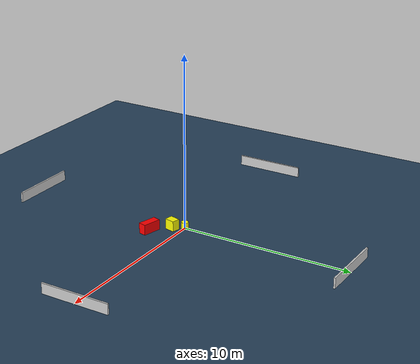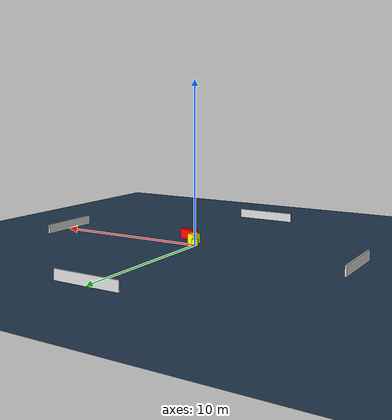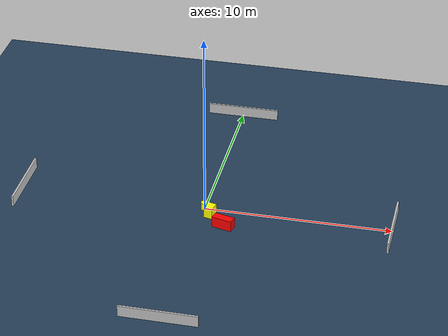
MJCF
<?xml version="1.0" ?>
<mujoco model="generated_environment">
  <option timestep="0.01" integrator="RK4" cone="elliptic"/>
  <default>
    <geom density="1"/>
  </default>
  <asset>
    <texture builtin="gradient" height="3072" name="skybox" rgb1="0.3 0.5 0.7" rgb2="0 0 0" type="skybox" width="512"/>
    <texture builtin="checker" height="300" name="groundplane" rgb1="0.2 0.3 0.4" rgb2="0.1 0.2 0.3" type="2d" width="300"/>
    <material name="groundplane" reflectance="0.2" texrepeat="5 5" texture="groundplane"/>
  </asset>
  <worldbody>
    <light dir="0 0 -1" directional="true" pos="0 0 1.5"/>
    <geom condim="3" friction="0.5 0.005 0.001" material="groundplane" name="floor" pos="0 0 0" size="0 0 0.05" type="plane"/>
    <body name="walls">
      <geom name="wall_1" condim="4" pos="-10.0 0.0 0.3" rgba="0.800000011920929 0.800000011920929 0.800000011920929 1.0" size="0.05 2.0 0.3" type="box"/>
      <geom name="wall_2" condim="4" pos="10.0 0.0 0.3" rgba="0.800000011920929 0.800000011920929 0.800000011920929 1.0" size="0.05 2.0 0.3" type="box"/>
      <geom name="wall_3" condim="4" pos="0.0 -10.0 0.3" rgba="0.800000011920929 0.800000011920929 0.800000011920929 1.0" size="2.0 0.05 0.3" type="box"/>
      <geom name="wall_4" condim="4" pos="0.0 10.0 0.3" rgba="0.800000011920929 0.800000011920929 0.800000011920929 1.0" size="2.0 0.05 0.3" type="box"/>
    </body>
    <body name="robot">
      <joint name="joint_x" type="slide" pos="0 0 0" axis="1 0 0"/>
      <joint name="joint_y" type="slide" pos="0 0 0" axis="0 1 0"/>
      <geom name="robot" type="cylinder" pos="0.0 0.0 0.2" size="0.2 0.2 0.0" mass="5.0" friction="1.0 0.005 0.0001" condim="4" rgba="1.0 1.0 0.0 1.0"/>
    </body>
    <body name="obstacle_1_movable">
      <geom name="obstacle_1_movable" condim="4" pos="0.4154825432171007 -0.5613135019875356 0.3" euler="0 0 256.1252853464015" friction="0.0 0.005 0.001" rgba="1.0 1.0 0.0 1.0" size="0.29525536167505945 0.2329993595331784 0.3" type="box" mass="0.1"/>
      <joint type="free"/>
    </body>
    <body name="obstacle_2_static">
      <geom name="obstacle_2_static" condim="4" pos="1.3257571244332782 -1.4747687079162195 0.3" euler="0 0 345.98834073258513" friction="0.0 0.005 0.001" rgba="1.0 0.0 0.0 1.0" size="0.54373209097515 0.2233044364884298 0.3" type="box"/>
    </body>
  </worldbody>
  <actuator>
    <motor name="actuator_x" joint="joint_x" gear="1" ctrlrange="-1 1"/>
    <motor name="actuator_y" joint="joint_y" gear="1" ctrlrange="-1 1"/>
  </actuator>
</mujoco>
